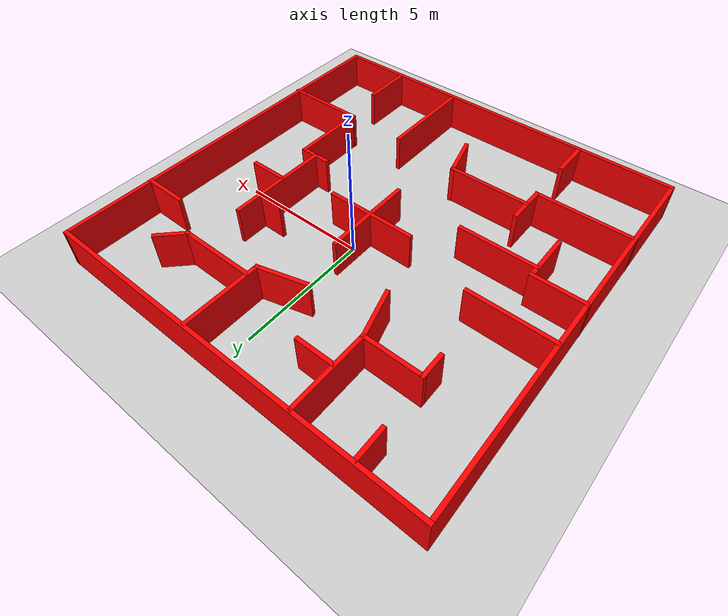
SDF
<sdf version="1.4">
 <world name="default">
  <light name="sun" type="directional">
   <pose>0 0 10 0 -0 0</pose>
   <diffuse>0.8 0.8 0.8 1</diffuse>
   <specular>0.2 0.2 0.2 1</specular>
   <attenuation>
    <range>1000</range>
    <constant>0.9</constant>
    <linear>0.01</linear>
    <quadratic>0.001</quadratic>
   </attenuation>
   <direction>-0.5 0.1 -0.9</direction>
  </light>
  <model name="ground_plane">
   <static>1</static>
   <link name="link">
    <collision name="collision">
     <geometry><plane><normal>0 0 1</normal><size>100 100</size></plane></geometry>
     <surface><friction><ode><mu>100</mu><mu2>50</mu2></ode></friction></surface>
    </collision>
    <visual name="visual">
     <cast_shadows>0</cast_shadows>
     <geometry><plane><normal>0 0 1</normal><size>100 100</size></plane></geometry>
     <material>
      <script><uri>file://media/materials/scripts/gazebo.material</uri><name>Gazebo/Grey</name></script>
     </material>
    </visual>
    <velocity_decay><linear>0</linear><angular>0</angular></velocity_decay>
   </link>
  </model>
  <physics type="ode">
   <max_step_size>0.001</max_step_size>
   <real_time_factor>1</real_time_factor>
   <real_time_update_rate>1000</real_time_update_rate>
   <gravity>0 0 -9.8</gravity>
  </physics>
  <scene><ambient>0.4 0.4 0.4 1</ambient><background>0.7 0.7 0.7 1</background><shadows>1</shadows></scene>
  <spherical_coordinates>
   <surface_model>EARTH_WGS84</surface_model>
   <latitude_deg>0</latitude_deg>
   <longitude_deg>0</longitude_deg>
   <elevation>0</elevation>
   <heading_deg>0</heading_deg>
  </spherical_coordinates>
  <model name="test_space_2">
   <pose>-0.41593 -1 -0.507404 0 -0 0</pose>
   <link name="Wall_11">
    <collision name="Wall_11_Collision">
     <geometry><box><size>3.5 0.15 1.5</size></box></geometry>
     <pose>0 0 1.25 0 -0 0</pose>
    </collision>
    <visual name="Wall_11_Visual">
     <pose>0 0 1.25 0 -0 0</pose>
     <geometry><box><size>3.5 0.15 1.5</size></box></geometry>
     <material>
      <script><uri>file://media/materials/scripts/gazebo.material</uri><name>Gazebo/Grey</name></script>
      <ambient>1 0 0 1</ambient>
     </material>
    </visual>
    <pose>0.115856 0.51259 0 0 0 -1.5708</pose>
    <velocity_decay><linear>0</linear><angular>0</angular></velocity_decay>
   </link>
   <link name="Wall_13">
    <collision name="Wall_13_Collision">
     <geometry><box><size>3.12236 0.15 1.5</size></box></geometry>
     <pose>0 0 1.25 0 -0 0</pose>
    </collision>
    <visual name="Wall_13_Visual">
     <pose>0 0 1.25 0 -0 0</pose>
     <geometry><box><size>3.12236 0.15 1.5</size></box></geometry>
     <material>
      <script><uri>file://media/materials/scripts/gazebo.material</uri><name>Gazebo/Grey</name></script>
      <ambient>1 0 0 1</ambient>
     </material>
    </visual>
    <pose>-2.95777 5.92018 0 0 0 -1.5708</pose>
    <velocity_decay><linear>0</linear><angular>0</angular></velocity_decay>
   </link>
   <link name="Wall_17">
    <collision name="Wall_17_Collision">
     <geometry><box><size>1.5 0.15 1.5</size></box></geometry>
     <pose>0 0 1.25 0 -0 0</pose>
    </collision>
    <visual name="Wall_17_Visual">
     <pose>0 0 1.25 0 -0 0</pose>
     <geometry><box><size>1.5 0.15 1.5</size></box></geometry>
     <material>
      <script><uri>file://media/materials/scripts/gazebo.material</uri><name>Gazebo/Grey</name></script>
      <ambient>1 0 0 1</ambient>
     </material>
    </visual>
    <pose>-2.23847 5.67835 0 0 -0 0</pose>
    <velocity_decay><linear>0</linear><angular>0</angular></velocity_decay>
   </link>
   <link name="Wall_2">
    <collision name="Wall_2_Collision">
     <geometry><box><size>15 0.15 1.5</size></box></geometry>
     <pose>0 0 1.25 0 -0 0</pose>
    </collision>
    <visual name="Wall_2_Visual">
     <pose>0 0 1.25 0 -0 0</pose>
     <geometry><box><size>15 0.15 1.5</size></box></geometry>
     <material>
      <script><uri>file://media/materials/scripts/gazebo.material</uri><name>Gazebo/Grey</name></script>
      <ambient>1 0 0 1</ambient>
     </material>
    </visual>
    <pose>-0.015982 7.425 0 0 -0 0</pose>
    <velocity_decay><linear>0</linear><angular>0</angular></velocity_decay>
   </link>
   <link name="Wall_20">
    <collision name="Wall_20_Collision">
     <geometry><box><size>1.25 0.15 1.5</size></box></geometry>
     <pose>0 0 1.25 0 -0 0</pose>
    </collision>
    <visual name="Wall_20_Visual">
     <pose>0 0 1.25 0 -0 0</pose>
     <geometry><box><size>1.25 0.15 1.5</size></box></geometry>
     <material>
      <script><uri>file://media/materials/scripts/gazebo.material</uri><name>Gazebo/Grey</name></script>
      <ambient>1 0 0 1</ambient>
     </material>
    </visual>
    <pose>-5.15445 6.8396 0 0 0 -1.5708</pose>
    <velocity_decay><linear>0</linear><angular>0</angular></velocity_decay>
   </link>
   <link name="Wall_23">
    <collision name="Wall_23_Collision">
     <geometry><box><size>3.25 0.15 1.5</size></box></geometry>
     <pose>0 0 1.25 0 -0 0</pose>
    </collision>
    <visual name="Wall_23_Visual">
     <pose>0 0 1.25 0 -0 0</pose>
     <geometry><box><size>3.25 0.15 1.5</size></box></geometry>
     <material>
      <script><uri>file://media/materials/scripts/gazebo.material</uri><name>Gazebo/Grey</name></script>
      <ambient>1 0 0 1</ambient>
     </material>
    </visual>
    <pose>-5.86813 1.17978 0 0 -0 0</pose>
    <velocity_decay><linear>0</linear><angular>0</angular></velocity_decay>
   </link>
   <link name="Wall_29">
    <collision name="Wall_29_Collision">
     <geometry><box><size>2.04007 0.15 1.5</size></box></geometry>
     <pose>0 0 1.25 0 -0 0</pose>
    </collision>
    <visual name="Wall_29_Visual">
     <pose>0 0 1.25 0 -0 0</pose>
     <geometry><box><size>2.04007 0.15 1.5</size></box></geometry>
     <material>
      <script><uri>file://media/materials/scripts/gazebo.material</uri><name>Gazebo/Grey</name></script>
      <ambient>1 0 0 1</ambient>
     </material>
    </visual>
    <pose>-6.50369 -0.625045 0 0 -0 0</pose>
    <velocity_decay><linear>0</linear><angular>0</angular></velocity_decay>
   </link>
   <link name="Wall_3">
    <collision name="Wall_3_Collision">
     <geometry><box><size>15 0.15 1.5</size></box></geometry>
     <pose>0 0 1.25 0 -0 0</pose>
    </collision>
    <visual name="Wall_3_Visual">
     <pose>0 0 1.25 0 -0 0</pose>
     <geometry><box><size>15 0.15 1.5</size></box></geometry>
     <material>
      <script><uri>file://media/materials/scripts/gazebo.material</uri><name>Gazebo/Grey</name></script>
      <ambient>1 0 0 1</ambient>
     </material>
    </visual>
    <pose>7.40902 0 0 0 0 -1.5708</pose>
    <velocity_decay><linear>0</linear><angular>0</angular></velocity_decay>
   </link>
   <link name="Wall_30">
    <collision name="Wall_30_Collision">
     <geometry><box><size>1.90823 0.15 1.5</size></box></geometry>
     <pose>0 0 1.25 0 -0 0</pose>
    </collision>
    <visual name="Wall_30_Visual">
     <pose>0 0 1.25 0 -0 0</pose>
     <geometry><box><size>1.90823 0.15 1.5</size></box></geometry>
     <material>
      <script><uri>file://media/materials/scripts/gazebo.material</uri><name>Gazebo/Grey</name></script>
      <ambient>1 0 0 1</ambient>
     </material>
    </visual>
    <pose>-5.55865 -1.53475 0 0 0 -1.5708</pose>
    <velocity_decay><linear>0</linear><angular>0</angular></velocity_decay>
   </link>
   <link name="Wall_4">
    <collision name="Wall_4_Collision">
     <geometry><box><size>15 0.15 1.5</size></box></geometry>
     <pose>0 0 1.25 0 -0 0</pose>
    </collision>
    <visual name="Wall_4_Visual">
     <pose>0 0 1.25 0 -0 0</pose>
     <geometry><box><size>15 0.15 1.5</size></box></geometry>
     <material>
      <script><uri>file://media/materials/scripts/gazebo.material</uri><name>Gazebo/Grey</name></script>
      <ambient>1 0 0 1</ambient>
     </material>
    </visual>
    <pose>-0.015982 -7.425 0 0 -0 3.14159</pose>
    <velocity_decay><linear>0</linear><angular>0</angular></velocity_decay>
   </link>
   <link name="Wall_41">
    <collision name="Wall_41_Collision">
     <geometry><box><size>1.5 0.15 1.5</size></box></geometry>
     <pose>0 0 1.25 0 -0 0</pose>
    </collision>
    <visual name="Wall_41_Visual">
     <pose>0 0 1.25 0 -0 0</pose>
     <geometry><box><size>1.5 0.15 1.5</size></box></geometry>
     <material>
      <script><uri>file://media/materials/scripts/gazebo.material</uri><name>Gazebo/Grey</name></script>
      <ambient>1 0 0 1</ambient>
     </material>
    </visual>
    <pose>-3.83907 -6.63858 0 0 0 -1.5708</pose>
    <velocity_decay><linear>0</linear><angular>0</angular></velocity_decay>
   </link>
   <link name="Wall_43">
    <collision name="Wall_43_Collision">
     <geometry><box><size>3.78059 0.15 1.5</size></box></geometry>
     <pose>0 0 1.25 0 -0 0</pose>
    </collision>
    <visual name="Wall_43_Visual">
     <pose>0 0 1.25 0 -0 0</pose>
     <geometry><box><size>3.78059 0.15 1.5</size></box></geometry>
     <material>
      <script><uri>file://media/materials/scripts/gazebo.material</uri><name>Gazebo/Grey</name></script>
      <ambient>1 0 0 1</ambient>
     </material>
    </visual>
    <pose>-5.63343 -4.11233 0 0 -0 0</pose>
    <velocity_decay><linear>0</linear><angular>0</angular></velocity_decay>
   </link>
   <link name="Wall_44">
    <collision name="Wall_44_Collision">
     <geometry><box><size>1.5559 0.15 1.5</size></box></geometry>
     <pose>0 0 1.25 0 -0 0</pose>
    </collision>
    <visual name="Wall_44_Visual">
     <pose>0 0 1.25 0 -0 0</pose>
     <geometry><box><size>1.5559 0.15 1.5</size></box></geometry>
     <material>
      <script><uri>file://media/materials/scripts/gazebo.material</uri><name>Gazebo/Grey</name></script>
      <ambient>1 0 0 1</ambient>
     </material>
    </visual>
    <pose>-3.81813 -3.37879 0 0 -0 1.5708</pose>
    <velocity_decay><linear>0</linear><angular>0</angular></velocity_decay>
   </link>
   <link name="Wall_46">
    <collision name="Wall_46_Collision">
     <geometry><box><size>3.20481 0.15 1.5</size></box></geometry>
     <pose>0 0 1.25 0 -0 0</pose>
    </collision>
    <visual name="Wall_46_Visual">
     <pose>0 0 1.25 0 -0 0</pose>
     <geometry><box><size>3.20481 0.15 1.5</size></box></geometry>
     <material>
      <script><uri>file://media/materials/scripts/gazebo.material</uri><name>Gazebo/Grey</name></script>
      <ambient>1 0 0 1</ambient>
     </material>
    </visual>
    <pose>-2.25057 -3.40876 0 0 -0 0</pose>
    <velocity_decay><linear>0</linear><angular>0</angular></velocity_decay>
   </link>
   <link name="Wall_49">
    <collision name="Wall_49_Collision">
     <geometry><box><size>3 0.15 1.5</size></box></geometry>
     <pose>0 0 1.25 0 -0 0</pose>
    </collision>
    <visual name="Wall_49_Visual">
     <pose>0 0 1.25 0 -0 0</pose>
     <geometry><box><size>3 0.15 1.5</size></box></geometry>
     <material>
      <script><uri>file://media/materials/scripts/gazebo.material</uri><name>Gazebo/Grey</name></script>
      <ambient>1 0 0 1</ambient>
     </material>
    </visual>
    <pose>4.35911 -2.22848 0 0 -0 1.5708</pose>
    <velocity_decay><linear>0</linear><angular>0</angular></velocity_decay>
   </link>
   <link name="Wall_5">
    <collision name="Wall_5_Collision">
     <geometry><box><size>15 0.15 1.5</size></box></geometry>
     <pose>0 0 1.25 0 -0 0</pose>
    </collision>
    <visual name="Wall_5_Visual">
     <pose>0 0 1.25 0 -0 0</pose>
     <geometry><box><size>15 0.15 1.5</size></box></geometry>
     <material>
      <script><uri>file://media/materials/scripts/gazebo.material</uri><name>Gazebo/Grey</name></script>
      <ambient>1 0 0 1</ambient>
     </material>
    </visual>
    <pose>-7.44098 0 0 0 -0 1.5708</pose>
    <velocity_decay><linear>0</linear><angular>0</angular></velocity_decay>
   </link>
   <link name="Wall_50">
    <collision name="Wall_50_Collision">
     <geometry><box><size>1.25 0.15 1.5</size></box></geometry>
     <pose>0 0 1.25 0 -0 0</pose>
    </collision>
    <visual name="Wall_50_Visual">
     <pose>0 0 1.25 0 -0 0</pose>
     <geometry><box><size>1.25 0.15 1.5</size></box></geometry>
     <material>
      <script><uri>file://media/materials/scripts/gazebo.material</uri><name>Gazebo/Grey</name></script>
      <ambient>1 0 0 1</ambient>
     </material>
    </visual>
    <pose>3.80911 -0.803478 0 0 -0 3.14159</pose>
    <velocity_decay><linear>0</linear><angular>0</angular></velocity_decay>
   </link>
   <link name="Wall_52">
    <collision name="Wall_52_Collision">
     <geometry><box><size>4 0.15 1.5</size></box></geometry>
     <pose>0 0 1.25 0 -0 0</pose>
    </collision>
    <visual name="Wall_52_Visual">
     <pose>0 0 1.25 0 -0 0</pose>
     <geometry><box><size>4 0.15 1.5</size></box></geometry>
     <material>
      <script><uri>file://media/materials/scripts/gazebo.material</uri><name>Gazebo/Grey</name></script>
      <ambient>1 0 0 1</ambient>
     </material>
    </visual>
    <pose>3.77789 1.147 0 0 -0 1.5708</pose>
    <velocity_decay><linear>0</linear><angular>0</angular></velocity_decay>
   </link>
   <link name="Wall_54">
    <collision name="Wall_54_Collision">
     <geometry><box><size>3 0.15 1.5</size></box></geometry>
     <pose>0 0 1.25 0 -0 0</pose>
    </collision>
    <visual name="Wall_54_Visual">
     <pose>0 0 1.25 0 -0 0</pose>
     <geometry><box><size>3 0.15 1.5</size></box></geometry>
     <material>
      <script><uri>file://media/materials/scripts/gazebo.material</uri><name>Gazebo/Grey</name></script>
      <ambient>1 0 0 1</ambient>
     </material>
    </visual>
    <pose>-4.09654 -0.992128 0 0 -0 0</pose>
    <velocity_decay><linear>0</linear><angular>0</angular></velocity_decay>
   </link>
   <link name="Wall_56">
    <collision name="Wall_56_Collision">
     <geometry><box><size>1 0.15 1.5</size></box></geometry>
     <pose>0 0 1.25 0 -0 0</pose>
    </collision>
    <visual name="Wall_56_Visual">
     <pose>0 0 1.25 0 -0 0</pose>
     <geometry><box><size>1 0.15 1.5</size></box></geometry>
     <material>
      <script><uri>file://media/materials/scripts/gazebo.material</uri><name>Gazebo/Grey</name></script>
      <ambient>1 0 0 1</ambient>
     </material>
    </visual>
    <pose>3.29171 2.03631 0 0 -0 3.14159</pose>
    <velocity_decay><linear>0</linear><angular>0</angular></velocity_decay>
   </link>
   <link name="Wall_58">
    <collision name="Wall_58_Collision">
     <geometry><box><size>3 0.15 1.5</size></box></geometry>
     <pose>0 0 1.25 0 -0 0</pose>
    </collision>
    <visual name="Wall_58_Visual">
     <pose>0 0 1.25 0 -0 0</pose>
     <geometry><box><size>3 0.15 1.5</size></box></geometry>
     <material>
      <script><uri>file://media/materials/scripts/gazebo.material</uri><name>Gazebo/Grey</name></script>
      <ambient>1 0 0 1</ambient>
     </material>
    </visual>
    <pose>1.36126 5.934 0 0 0 -1.5708</pose>
    <velocity_decay><linear>0</linear><angular>0</angular></velocity_decay>
   </link>
   <link name="Wall_60">
    <collision name="Wall_60_Collision">
     <geometry><box><size>3 0.15 1.5</size></box></geometry>
     <pose>0 0 1.25 0 -0 0</pose>
    </collision>
    <visual name="Wall_60_Visual">
     <pose>0 0 1.25 0 -0 0</pose>
     <geometry><box><size>3 0.15 1.5</size></box></geometry>
     <material>
      <script><uri>file://media/materials/scripts/gazebo.material</uri><name>Gazebo/Grey</name></script>
      <ambient>1 0 0 1</ambient>
     </material>
    </visual>
    <pose>2.81685 4.91179 0 0 -0 0</pose>
    <velocity_decay><linear>0</linear><angular>0</angular></velocity_decay>
   </link>
   <link name="Wall_62">
    <collision name="Wall_62_Collision">
     <geometry><box><size>2 0.15 1.5</size></box></geometry>
     <pose>0 0 1.25 0 -0 0</pose>
    </collision>
    <visual name="Wall_62_Visual">
     <pose>0 0 1.25 0 -0 0</pose>
     <geometry><box><size>2 0.15 1.5</size></box></geometry>
     <material>
      <script><uri>file://media/materials/scripts/gazebo.material</uri><name>Gazebo/Grey</name></script>
      <ambient>1 0 0 1</ambient>
     </material>
    </visual>
    <pose>0.467784 4.2696 0 0 0 -2.87979</pose>
    <velocity_decay><linear>0</linear><angular>0</angular></velocity_decay>
   </link>
   <link name="Wall_64">
    <collision name="Wall_64_Collision">
     <geometry><box><size>1.75 0.15 1.5</size></box></geometry>
     <pose>0 0 1.25 0 -0 0</pose>
    </collision>
    <visual name="Wall_64_Visual">
     <pose>0 0 1.25 0 -0 0</pose>
     <geometry><box><size>1.75 0.15 1.5</size></box></geometry>
     <material>
      <script><uri>file://media/materials/scripts/gazebo.material</uri><name>Gazebo/Grey</name></script>
      <ambient>1 0 0 1</ambient>
     </material>
    </visual>
    <pose>-0.516184 -4.15091 0 0 0 -1.309</pose>
    <velocity_decay><linear>0</linear><angular>0</angular></velocity_decay>
   </link>
   <link name="Wall_66">
    <collision name="Wall_66_Collision">
     <geometry><box><size>1.25 0.15 1.5</size></box></geometry>
     <pose>0 0 1.25 0 -0 0</pose>
    </collision>
    <visual name="Wall_66_Visual">
     <pose>0 0 1.25 0 -0 0</pose>
     <geometry><box><size>1.25 0.15 1.5</size></box></geometry>
     <material>
      <script><uri>file://media/materials/scripts/gazebo.material</uri><name>Gazebo/Grey</name></script>
      <ambient>1 0 0 1</ambient>
     </material>
    </visual>
    <pose>4.63076 5.3007 0 0 -0 0.785398</pose>
    <velocity_decay><linear>0</linear><angular>0</angular></velocity_decay>
   </link>
   <link name="Wall_68">
    <collision name="Wall_68_Collision">
     <geometry><box><size>1.5 0.15 1.5</size></box></geometry>
     <pose>0 0 1.25 0 -0 0</pose>
    </collision>
    <visual name="Wall_68_Visual">
     <pose>0 0 1.25 0 -0 0</pose>
     <geometry><box><size>1.5 0.15 1.5</size></box></geometry>
     <material>
      <script><uri>file://media/materials/scripts/gazebo.material</uri><name>Gazebo/Grey</name></script>
      <ambient>1 0 0 1</ambient>
     </material>
    </visual>
    <pose>4.51407 0.935057 0 0 -0 0</pose>
    <velocity_decay><linear>0</linear><angular>0</angular></velocity_decay>
   </link>
   <link name="Wall_7">
    <collision name="Wall_7_Collision">
     <geometry><box><size>3.5 0.15 1.5</size></box></geometry>
     <pose>0 0 1.25 0 -0 0</pose>
    </collision>
    <visual name="Wall_7_Visual">
     <pose>0 0 1.25 0 -0 0</pose>
     <geometry><box><size>3.5 0.15 1.5</size></box></geometry>
     <material>
      <script><uri>file://media/materials/scripts/gazebo.material</uri><name>Gazebo/Grey</name></script>
      <ambient>1 0 0 1</ambient>
     </material>
    </visual>
    <pose>0.102582 0.405556 0 0 -0 0</pose>
    <velocity_decay><linear>0</linear><angular>0</angular></velocity_decay>
   </link>
   <link name="Wall_70">
    <collision name="Wall_70_Collision">
     <geometry><box><size>1.75 0.15 1.5</size></box></geometry>
     <pose>0 0 1.25 0 -0 0</pose>
    </collision>
    <visual name="Wall_70_Visual">
     <pose>0 0 1.25 0 -0 0</pose>
     <geometry><box><size>1.75 0.15 1.5</size></box></geometry>
     <material>
      <script><uri>file://media/materials/scripts/gazebo.material</uri><name>Gazebo/Grey</name></script>
      <ambient>1 0 0 1</ambient>
     </material>
    </visual>
    <pose>6.61813 4.02467 0 0 -0 3.14159</pose>
    <velocity_decay><linear>0</linear><angular>0</angular></velocity_decay>
   </link>
   <link name="Wall_72">
    <collision name="Wall_72_Collision">
     <geometry><box><size>3.75 0.15 1.5</size></box></geometry>
     <pose>0 0 1.25 0 -0 0</pose>
    </collision>
    <visual name="Wall_72_Visual">
     <pose>0 0 1.25 0 -0 0</pose>
     <geometry><box><size>3.75 0.15 1.5</size></box></geometry>
     <material>
      <script><uri>file://media/materials/scripts/gazebo.material</uri><name>Gazebo/Grey</name></script>
      <ambient>1 0 0 1</ambient>
     </material>
    </visual>
    <pose>1.97307 -5.45348 0 0 0 -1.5708</pose>
    <velocity_decay><linear>0</linear><angular>0</angular></velocity_decay>
   </link>
   <link name="Wall_74">
    <collision name="Wall_74_Collision">
     <geometry><box><size>3.25 0.15 1.5</size></box></geometry>
     <pose>0 0 1.25 0 -0 0</pose>
    </collision>
    <visual name="Wall_74_Visual">
     <pose>0 0 1.25 0 -0 0</pose>
     <geometry><box><size>3.25 0.15 1.5</size></box></geometry>
     <material>
      <script><uri>file://media/materials/scripts/gazebo.material</uri><name>Gazebo/Grey</name></script>
      <ambient>1 0 0 1</ambient>
     </material>
    </visual>
    <pose>5.89872 -3.65348 0 0 -0 3.14159</pose>
    <velocity_decay><linear>0</linear><angular>0</angular></velocity_decay>
   </link>
   <link name="Wall_76">
    <collision name="Wall_76_Collision">
     <geometry><box><size>2 0.15 1.5</size></box></geometry>
     <pose>0 0 1.25 0 -0 0</pose>
    </collision>
    <visual name="Wall_76_Visual">
     <pose>0 0 1.25 0 -0 0</pose>
     <geometry><box><size>2 0.15 1.5</size></box></geometry>
     <material>
      <script><uri>file://media/materials/scripts/gazebo.material</uri><name>Gazebo/Grey</name></script>
      <ambient>1 0 0 1</ambient>
     </material>
    </visual>
    <pose>4.72619 -6.35271 0 0 0 -1.5708</pose>
    <velocity_decay><linear>0</linear><angular>0</angular></velocity_decay>
   </link>
   <link name="Wall_80">
    <collision name="Wall_80_Collision">
     <geometry><box><size>1.91152 0.15 1.5</size></box></geometry>
     <pose>0 0 1.25 0 -0 0</pose>
    </collision>
    <visual name="Wall_80_Visual">
     <pose>0 0 1.25 0 -0 0</pose>
     <geometry><box><size>1.91152 0.15 1.5</size></box></geometry>
     <material>
      <script><uri>file://media/materials/scripts/gazebo.material</uri><name>Gazebo/Grey</name></script>
      <ambient>1 0 0 1</ambient>
     </material>
    </visual>
    <pose>-2.71837 3.5864 0 0 0 -1.29551</pose>
    <velocity_decay><linear>0</linear><angular>0</angular></velocity_decay>
   </link>
   <link name="Wall_82">
    <collision name="Wall_82_Collision">
     <geometry><box><size>2.25 0.15 1.5</size></box></geometry>
     <pose>0 0 1.25 0 -0 0</pose>
    </collision>
    <visual name="Wall_82_Visual">
     <pose>0 0 1.25 0 -0 0</pose>
     <geometry><box><size>2.25 0.15 1.5</size></box></geometry>
     <material>
      <script><uri>file://media/materials/scripts/gazebo.material</uri><name>Gazebo/Grey</name></script>
      <ambient>1 0 0 1</ambient>
     </material>
    </visual>
    <pose>-4.00777 4.434 0 0 -0 3.14159</pose>
    <velocity_decay><linear>0</linear><angular>0</angular></velocity_decay>
   </link>
   <link name="Wall_83">
    <collision name="Wall_83_Collision">
     <geometry><box><size>1 0.15 1.5</size></box></geometry>
     <pose>0 0 1.25 0 -0 0</pose>
    </collision>
    <visual name="Wall_83_Visual">
     <pose>0 0 1.25 0 -0 0</pose>
     <geometry><box><size>1 0.15 1.5</size></box></geometry>
     <material>
      <script><uri>file://media/materials/scripts/gazebo.material</uri><name>Gazebo/Grey</name></script>
      <ambient>1 0 0 1</ambient>
     </material>
    </visual>
    <pose>-5.05777 4.009 0 0 0 -1.5708</pose>
    <velocity_decay><linear>0</linear><angular>0</angular></velocity_decay>
   </link>
   <static>1</static>
  </model>
 </world>
</sdf>
